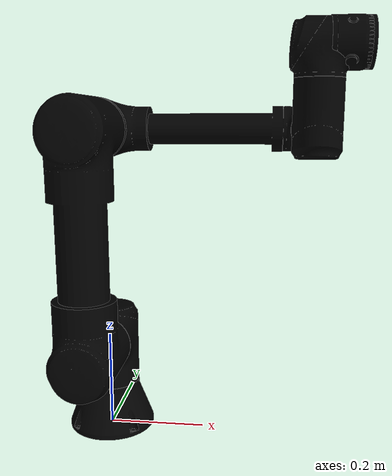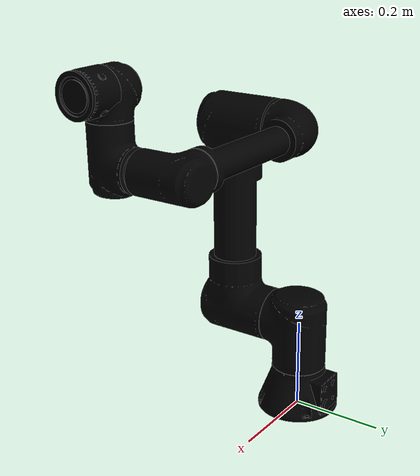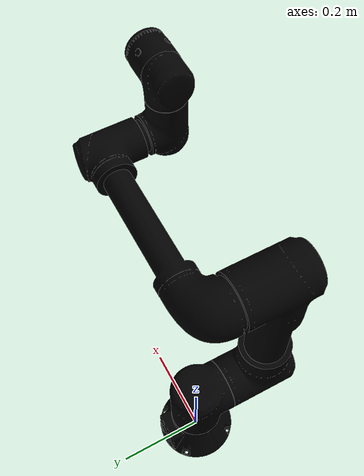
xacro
<?xml version="1.0" encoding="UTF-8"?>
<robot xmlns:xacro="http://www.ros.org/wiki/xacro" name="rs_m90e7">
    <xacro:arg name="prefix" default="" />

    <!-- include macro from xacro files -->
    <xacro:include filename="$(find rs_m90e7_description)/urdf/rs_m90e7/rs_m90e7_macro.xacro"/>

    <xacro:rs_m90e7 prefix="" parent="">
        <!-- position robot in the world -->
        <origin xyz="0 0 0" rpy="0 0 0" />
    </xacro:rs_m90e7>

</robot>

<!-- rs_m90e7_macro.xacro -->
<robot xmlns:xacro="http://www.ros.org/wiki/xacro">
  <xacro:macro name="rs_m90e7" params="prefix parent *origin">
    <link name="${prefix}base_link">
      <inertial>
        <origin
          xyz="0.00004 0.01193 0.05418"
          rpy="0 0 0" />
        <mass
          value="0.91957" />
        <inertia
          ixx=" 0.003109"
          ixy="-0.000002"
          ixz="-0.000001"
          iyy=" 0.002643"
          iyz="-0.000092"
          izz=" 0.003424" />
      </inertial>
      <visual>
        <origin xyz="0 0 0" rpy="0 0 0" />
        <geometry>
          <mesh filename="package://rs_m90e7_description/meshes/base_link.dae" />
        </geometry>
        <material name="">
          <color rgba="0 0 0 1" />
        </material>
      </visual>
      <collision>
        <origin xyz="0 0 0" rpy="0 0 0" />
        <geometry>
          <mesh filename="package://rs_m90e7_description/meshes/base_link.stl" />
        </geometry>
      </collision>
    </link>
    <link name="${prefix}link1">
      <inertial>
        <origin
          xyz="-0.009177 0.089530 0.000000"
          rpy="0 0 0" />
        <mass
          value="2.095055" />
        <inertia
          ixx=" 0.006074"
          ixy="-0.000305"
          ixz=" 0.000000"
          iyy=" 0.004584"
          iyz=" 0.000000"
          izz=" 0.006717" />
      </inertial>
      <visual>
        <origin xyz="0 0 0" rpy="0 0 0" />
        <geometry>
          <mesh filename="package://rs_m90e7_description/meshes/link1.dae" />
        </geometry>
        <material name="">
          <color rgba="0 0 0 1" />
        </material>
      </visual>
      <collision>
        <origin xyz="0 0 0" rpy="0 0 0" />
        <geometry>
          <mesh filename="package://rs_m90e7_description/meshes/link1.stl" />
        </geometry>
      </collision>
    </link>
    <joint name="${prefix}joint1" type="revolute">
      <origin xyz="0 0 0.10095" rpy="1.5708 0 1.5708" />
      <parent link="${prefix}base_link" />
      <child link="${prefix}link1" />
      <axis xyz="0 1 0" />
      <limit lower="-6.2832" upper="6.2832" effort="0" velocity="4.7124" />
    </joint>
    <link name="${prefix}link2">
      <inertial>
        <origin
          xyz="-0.21500 0.09444 0.00000"
          rpy="0 0 0" />
        <mass
          value="6.55317" />
        <inertia
          ixx=" 0.015891"
          ixy=" 0.000000"
          ixz=" 0.000000"
          iyy=" 0.206360"
          iyz=" 0.000000"
          izz=" 0.210906" />
      </inertial>
      <visual>
        <origin xyz="0 0 0" rpy="0 0 0" />
        <geometry>
          <mesh filename="package://rs_m90e7_description/meshes/link2.dae" />
        </geometry>
        <material name="">
          <color rgba="0 0 0 1" />
        </material>
      </visual>
      <collision>
        <origin xyz="0 0 0" rpy="0 0 0" />
        <geometry>
          <mesh filename="package://rs_m90e7_description/meshes/link2.stl" />
        </geometry>
      </collision>
    </link>
    <joint name="${prefix}joint2" type="revolute">
      <origin xyz="-0.06895 0.10315 0" rpy="3.1416 0 -1.5708" />
      <parent link="${prefix}link1" />
      <child link="${prefix}link2" />
      <axis xyz="0 -1 0" />
      <limit lower="-6.2832" upper="6.2832" effort="0" velocity="4.7124" />
    </joint>
    <link name="${prefix}link3">
      <inertial>
        <origin
          xyz="-0.19905 0.05265 0.00000"
          rpy="0 0 0" />
        <mass
          value="2.72253" />
        <inertia
          ixx=" 0.003560"
          ixy="-0.000889"
          ixz=" 0.000000"
          iyy=" 0.080167"
          iyz=" 0.000000"
          izz=" 0.081015" />
      </inertial>
      <visual>
        <origin xyz="0 0 0" rpy="0 0 0" />
        <geometry>
          <mesh filename="package://rs_m90e7_description/meshes/link3.dae" />
        </geometry>
        <material name="">
          <color rgba="0 0 0 1" />
        </material>
      </visual>
      <collision>
        <origin xyz="0 0 0" rpy="0 0 0" />
        <geometry>
          <mesh filename="package://rs_m90e7_description/meshes/link3.stl" />
        </geometry>
      </collision>
    </link>
    <joint name="${prefix}joint3" type="revolute">
      <origin xyz="-0.43 0 0" rpy="3.1416 -1.5708 0" />
      <parent link="${prefix}link2" />
      <child link="${prefix}link3" />
      <axis xyz="0 1 0" />
      <limit lower="-4.0492" upper="1.2566" effort="0" velocity="7.1558" />
    </joint>
    <link name="${prefix}link4">
      <inertial>
        <origin
          xyz="0.015396 0.057512 0.000000"
          rpy="0 0 0" />
        <mass
          value="0.832958" />
        <inertia
          ixx=" 0.000897"
          ixy=" 0.000092"
          ixz=" 0.000000"
          iyy=" 0.001490"
          iyz=" 0.000000"
          izz=" 0.001595" />
      </inertial>
      <visual>
        <origin xyz="0 0 0" rpy="0 0 0" />
        <geometry>
          <mesh filename="package://rs_m90e7_description/meshes/link4.dae" />
        </geometry>
        <material name="">
          <color rgba="0 0 0 1" />
        </material>
      </visual>
      <collision>
        <origin xyz="0 0 0" rpy="0 0 0" />
        <geometry>
          <mesh filename="package://rs_m90e7_description/meshes/link4.stl" />
        </geometry>
      </collision>
    </link>
    <joint name="${prefix}joint4" type="revolute">
      <origin xyz="-0.41 -0.0217 0" rpy="3.1416 1.5708 0" />
      <parent link="${prefix}link3" />
      <child link="${prefix}link4" />
      <axis xyz="0 -1 0" />
      <limit lower="-6.2832" upper="6.2832" effort="16.9" velocity="8.2903" />
    </joint>
    <link name="${prefix}link5">
      <inertial>
        <origin
          xyz="0.015396 0.057512 0.000000"
          rpy="0 0 0" />
        <mass
          value="0.832958" />
        <inertia
          ixx=" 0.000897"
          ixy=" 0.000092"
          ixz=" 0.000000"
          iyy=" 0.001490"
          iyz=" 0.000000"
          izz=" 0.001595" />
      </inertial>
      <visual>
        <origin xyz="0 0 0" rpy="0 0 0" />
        <geometry>
          <mesh filename="package://rs_m90e7_description/meshes/link5.dae" />
        </geometry>
        <material name="">
          <color rgba="0 0 0 1" />
        </material>
      </visual>
      <collision>
        <origin xyz="0 0 0" rpy="0 0 0" />
        <geometry>
          <mesh filename="package://rs_m90e7_description/meshes/link5.stl" />
        </geometry>
      </collision>
    </link>
    <joint name="${prefix}joint5" type="revolute">
      <origin xyz="0.07565 0.0634 0" rpy="-1.5708 -1.5708 0" />
      <parent link="${prefix}link4" />
      <child link="${prefix}link5" />
      <axis xyz="0 1 0" />
      <limit lower="-6.2832" upper="6.2832" effort="18.9" velocity="8.2903" />
    </joint>
    <link name="${prefix}link6">
      <inertial>
        <origin
          xyz="0.000045 -0.035542 0.000000"
          rpy="0 0 0" />
        <mass
          value="0.391580" />
        <inertia
          ixx=" 0.000327"
          ixy=" 0.000000"
          ixz=" 0.000000"
          iyy=" 0.000360"
          iyz=" 0.000000"
          izz=" 0.000326" />
      </inertial>
      <visual>
        <origin xyz="0 0 0" rpy="0 0 0" />
        <geometry>
          <mesh filename="package://rs_m90e7_description/meshes/link6.dae" />
        </geometry>
        <material name="">
          <color rgba="0 0 0 1" />
        </material>
      </visual>
      <collision>
        <origin xyz="0 0 0" rpy="0 0 0" />
        <geometry>
          <mesh filename="package://rs_m90e7_description/meshes/link6.stl" />
        </geometry>
      </collision>
    </link>
    <joint name="${prefix}joint6" type="revolute">
      <origin xyz="0.08085 0.0634 0" rpy="1.5708 -1.5708 0" />
      <parent link="${prefix}link5" />
      <child link="${prefix}link6" />
      <axis xyz="0 1 0" />
      <limit lower="-6.2832" upper="6.2832" effort="10.2" velocity="13.177" />
    </joint>
    <link name="${prefix}flange"/>
    <joint name="${prefix}jointf" type="fixed">
      <origin xyz="0 -0.0734 0" rpy="0 1.5708 -1.5708" />
      <parent link="${prefix}link6" />
      <child link="${prefix}flange" />
    </joint>

    <!-- 檢查${prefix}參數再決定該區快要不要輸出 -->
    <xacro:if value="${parent != ''}">
      <!-- base_joint fixes base_link to the environment -->
      <joint name="${prefix}base_joint" type="fixed">
        <xacro:insert_block name="origin" />
        <parent link="${parent}" />
        <child link="${prefix}base_link" />
      </joint>
    </xacro:if>

  </xacro:macro>
</robot>
